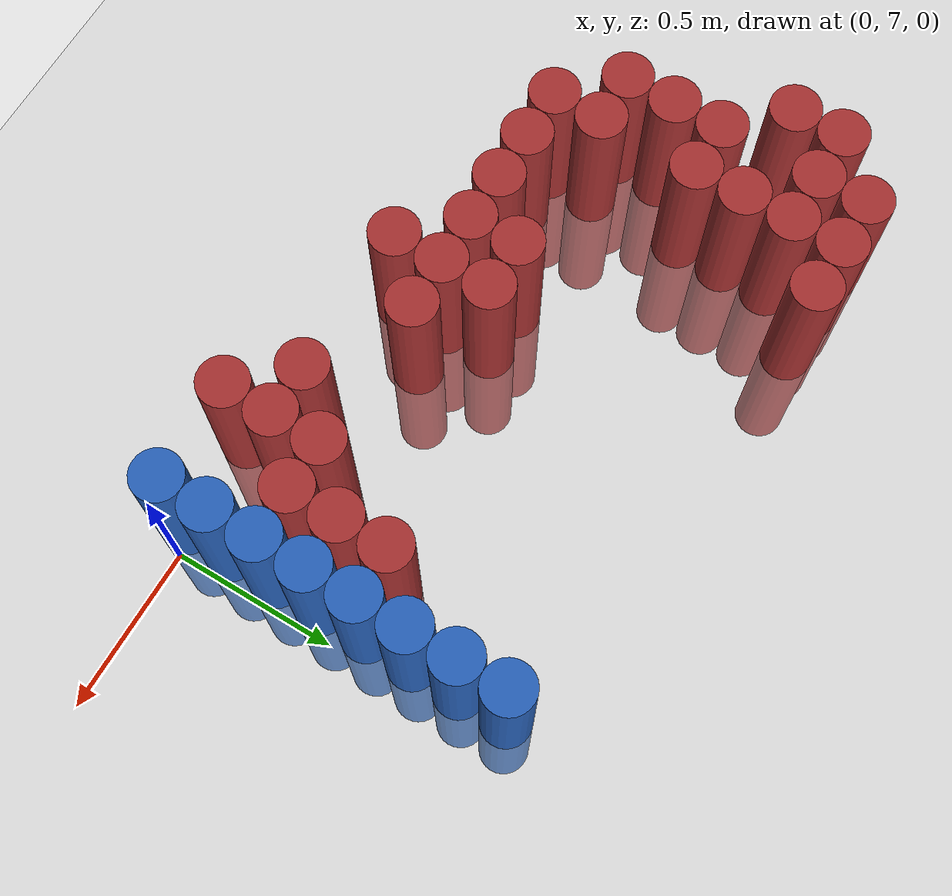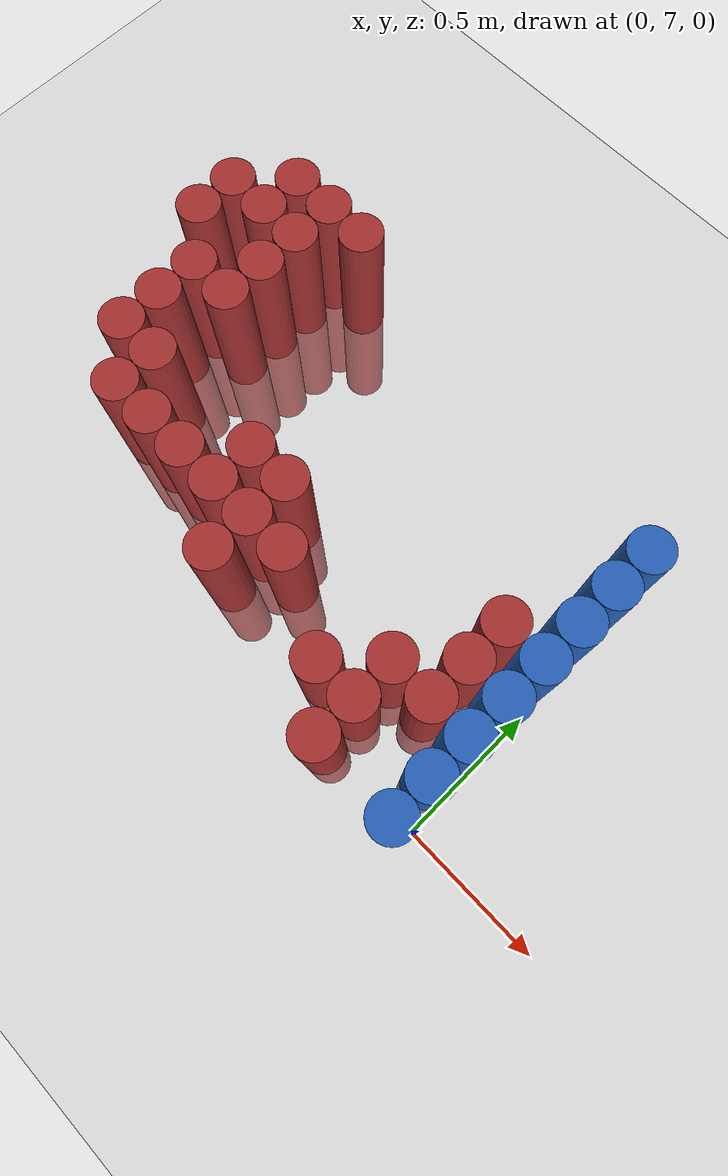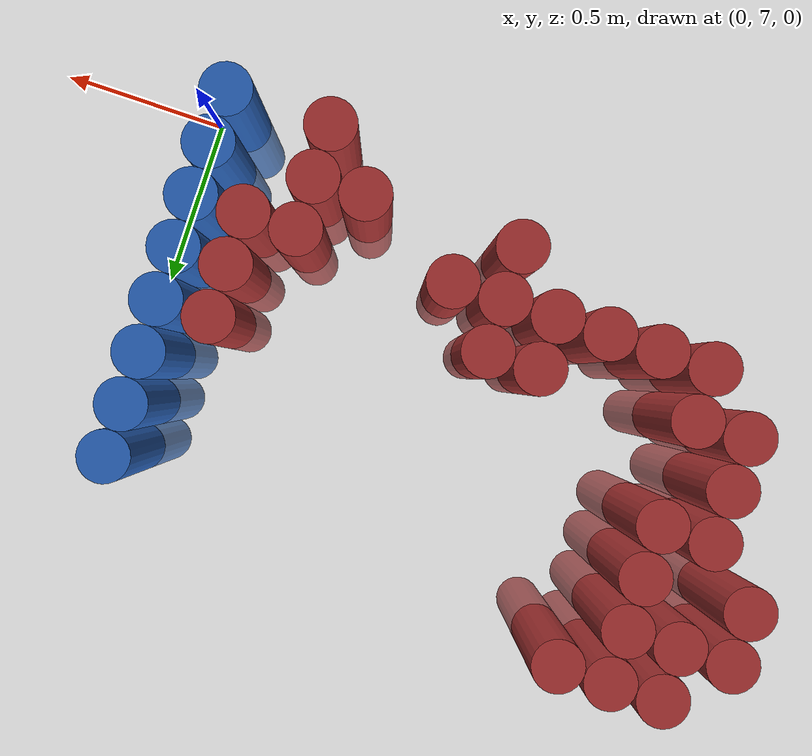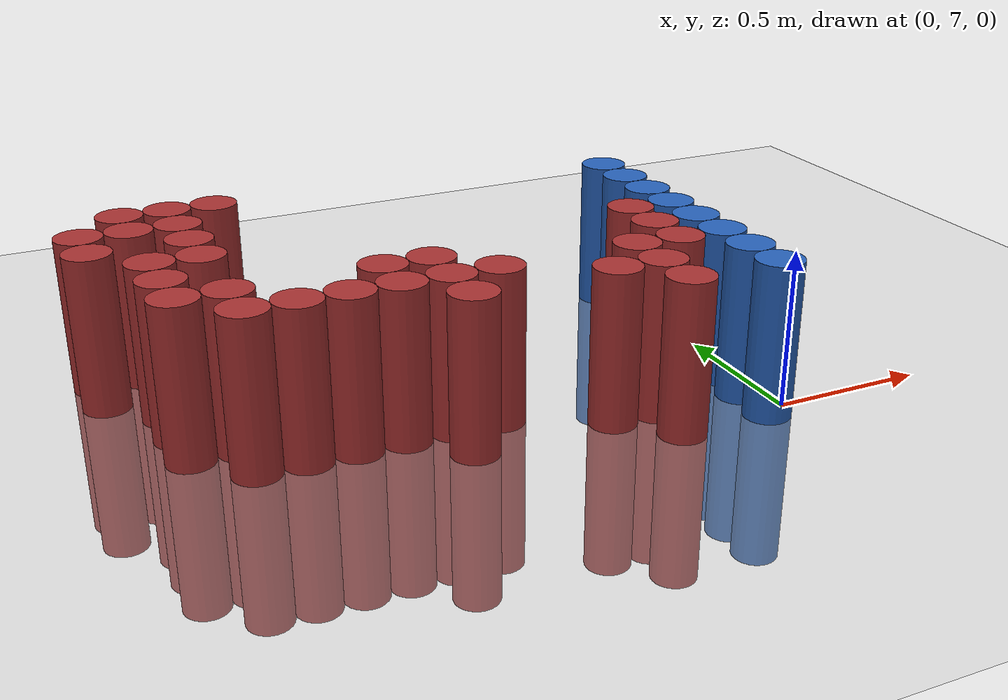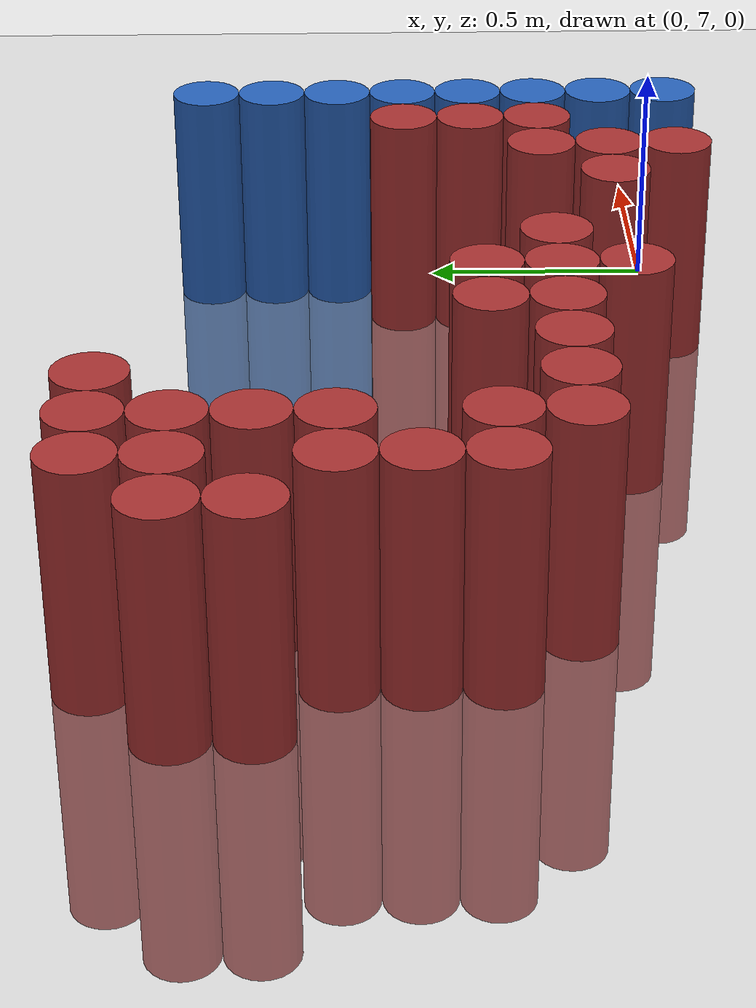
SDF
<sdf version="1.6">
 <world name="default">
  <model name="ground_plane">
   <static>1</static>
   <link name="link">
    <collision name="collision">
     <geometry><plane><normal>0 0 1</normal><size>100 100</size></plane></geometry>
     <surface><friction><ode><mu>100</mu><mu2>50</mu2></ode></friction></surface>
    </collision>
    <visual name="visual">
     <cast_shadows>0</cast_shadows>
     <geometry><plane><normal>0 0 1</normal><size>100 100</size></plane></geometry>
     <material>
      <script><uri>file://media/materials/scripts/gazebo.material</uri><name>Gazebo/Grey</name></script>
     </material>
    </visual>
   </link>
  </model>
  <model name="unit_cylinder_203">
   <static>1</static>
   <pose>-1.875000 7.875000 0.000000 0.000000 0.000000 0.000000</pose>
   <link name="link">
    <inertial>
     <mass>1</mass>
     <inertia><ixx>0.145833</ixx><ixy>0</ixy><ixz>0</ixz><iyy>0.145833</iyy><iyz>0</iyz><izz>0.125</izz></inertia>
    </inertial>
    <collision name="collision">
     <geometry><cylinder><radius>0.075000</radius><length>1</length></cylinder></geometry>
    </collision>
    <visual name="visual">
     <geometry><cylinder><radius>0.075000</radius><length>1</length></cylinder></geometry>
     <material>
      <ambient>0.648000 0.192000 0.192000 1</ambient>
      <diffuse>0.648000 0.192000 0.192000 1</diffuse>
     </material>
     <material>
      <script><name>Gazebo/Grey</name><uri>file://media/materials/scripts/gazebo.material</uri></script>
     </material>
    </visual>
    <sensor name="sensor_contact" type="contact"><contact><collision>collision</collision></contact></sensor>
   </link>
   <plugin filename="gz-sim-touchplugin-system" name="gz::sim::systems::TouchPlugin">
    <target>robot</target>
    <namespace>robot</namespace>
    <time>0.001</time>
    <enabled>true</enabled>
   </plugin>
  </model>
  <model name="unit_cylinder_204">
   <static>1</static>
   <pose>-1.875000 8.025000 0.000000 0.000000 0.000000 0.000000</pose>
   <link name="link">
    <inertial>
     <mass>1</mass>
     <inertia><ixx>0.145833</ixx><ixy>0</ixy><ixz>0</ixz><iyy>0.145833</iyy><iyz>0</iyz><izz>0.125</izz></inertia>
    </inertial>
    <collision name="collision">
     <geometry><cylinder><radius>0.075000</radius><length>1</length></cylinder></geometry>
    </collision>
    <visual name="visual">
     <geometry><cylinder><radius>0.075000</radius><length>1</length></cylinder></geometry>
     <material>
      <ambient>0.648000 0.192000 0.192000 1</ambient>
      <diffuse>0.648000 0.192000 0.192000 1</diffuse>
     </material>
     <material>
      <script><name>Gazebo/Grey</name><uri>file://media/materials/scripts/gazebo.material</uri></script>
     </material>
    </visual>
    <sensor name="sensor_contact" type="contact"><contact><collision>collision</collision></contact></sensor>
   </link>
   <plugin filename="gz-sim-touchplugin-system" name="gz::sim::systems::TouchPlugin">
    <target>robot</target>
    <namespace>robot</namespace>
    <time>0.001</time>
    <enabled>true</enabled>
   </plugin>
  </model>
  <model name="unit_cylinder_211">
   <static>1</static>
   <pose>-1.725000 7.425000 0.000000 0.000000 0.000000 0.000000</pose>
   <link name="link">
    <inertial>
     <mass>1</mass>
     <inertia><ixx>0.145833</ixx><ixy>0</ixy><ixz>0</ixz><iyy>0.145833</iyy><iyz>0</iyz><izz>0.125</izz></inertia>
    </inertial>
    <collision name="collision">
     <geometry><cylinder><radius>0.075000</radius><length>1</length></cylinder></geometry>
    </collision>
    <visual name="visual">
     <geometry><cylinder><radius>0.075000</radius><length>1</length></cylinder></geometry>
     <material>
      <ambient>0.648000 0.192000 0.192000 1</ambient>
      <diffuse>0.648000 0.192000 0.192000 1</diffuse>
     </material>
     <material>
      <script><name>Gazebo/Grey</name><uri>file://media/materials/scripts/gazebo.material</uri></script>
     </material>
    </visual>
    <sensor name="sensor_contact" type="contact"><contact><collision>collision</collision></contact></sensor>
   </link>
   <plugin filename="gz-sim-touchplugin-system" name="gz::sim::systems::TouchPlugin">
    <target>robot</target>
    <namespace>robot</namespace>
    <time>0.001</time>
    <enabled>true</enabled>
   </plugin>
  </model>
  <model name="unit_cylinder_212">
   <static>1</static>
   <pose>-1.725000 7.575000 0.000000 0.000000 0.000000 0.000000</pose>
   <link name="link">
    <inertial>
     <mass>1</mass>
     <inertia><ixx>0.145833</ixx><ixy>0</ixy><ixz>0</ixz><iyy>0.145833</iyy><iyz>0</iyz><izz>0.125</izz></inertia>
    </inertial>
    <collision name="collision">
     <geometry><cylinder><radius>0.075000</radius><length>1</length></cylinder></geometry>
    </collision>
    <visual name="visual">
     <geometry><cylinder><radius>0.075000</radius><length>1</length></cylinder></geometry>
     <material>
      <ambient>0.648000 0.192000 0.192000 1</ambient>
      <diffuse>0.648000 0.192000 0.192000 1</diffuse>
     </material>
     <material>
      <script><name>Gazebo/Grey</name><uri>file://media/materials/scripts/gazebo.material</uri></script>
     </material>
    </visual>
    <sensor name="sensor_contact" type="contact"><contact><collision>collision</collision></contact></sensor>
   </link>
   <plugin filename="gz-sim-touchplugin-system" name="gz::sim::systems::TouchPlugin">
    <target>robot</target>
    <namespace>robot</namespace>
    <time>0.001</time>
    <enabled>true</enabled>
   </plugin>
  </model>
  <model name="unit_cylinder_213">
   <static>1</static>
   <pose>-1.725000 7.725000 0.000000 0.000000 0.000000 0.000000</pose>
   <link name="link">
    <inertial>
     <mass>1</mass>
     <inertia><ixx>0.145833</ixx><ixy>0</ixy><ixz>0</ixz><iyy>0.145833</iyy><iyz>0</iyz><izz>0.125</izz></inertia>
    </inertial>
    <collision name="collision">
     <geometry><cylinder><radius>0.075000</radius><length>1</length></cylinder></geometry>
    </collision>
    <visual name="visual">
     <geometry><cylinder><radius>0.075000</radius><length>1</length></cylinder></geometry>
     <material>
      <ambient>0.648000 0.192000 0.192000 1</ambient>
      <diffuse>0.648000 0.192000 0.192000 1</diffuse>
     </material>
     <material>
      <script><name>Gazebo/Grey</name><uri>file://media/materials/scripts/gazebo.material</uri></script>
     </material>
    </visual>
    <sensor name="sensor_contact" type="contact"><contact><collision>collision</collision></contact></sensor>
   </link>
   <plugin filename="gz-sim-touchplugin-system" name="gz::sim::systems::TouchPlugin">
    <target>robot</target>
    <namespace>robot</namespace>
    <time>0.001</time>
    <enabled>true</enabled>
   </plugin>
  </model>
  <model name="unit_cylinder_214">
   <static>1</static>
   <pose>-1.725000 8.025000 0.000000 0.000000 0.000000 0.000000</pose>
   <link name="link">
    <inertial>
     <mass>1</mass>
     <inertia><ixx>0.145833</ixx><ixy>0</ixy><ixz>0</ixz><iyy>0.145833</iyy><iyz>0</iyz><izz>0.125</izz></inertia>
    </inertial>
    <collision name="collision">
     <geometry><cylinder><radius>0.075000</radius><length>1</length></cylinder></geometry>
    </collision>
    <visual name="visual">
     <geometry><cylinder><radius>0.075000</radius><length>1</length></cylinder></geometry>
     <material>
      <ambient>0.648000 0.192000 0.192000 1</ambient>
      <diffuse>0.648000 0.192000 0.192000 1</diffuse>
     </material>
     <material>
      <script><name>Gazebo/Grey</name><uri>file://media/materials/scripts/gazebo.material</uri></script>
     </material>
    </visual>
    <sensor name="sensor_contact" type="contact"><contact><collision>collision</collision></contact></sensor>
   </link>
   <plugin filename="gz-sim-touchplugin-system" name="gz::sim::systems::TouchPlugin">
    <target>robot</target>
    <namespace>robot</namespace>
    <time>0.001</time>
    <enabled>true</enabled>
   </plugin>
  </model>
  <model name="unit_cylinder_215">
   <static>1</static>
   <pose>-1.725000 8.175000 0.000000 0.000000 0.000000 0.000000</pose>
   <link name="link">
    <inertial>
     <mass>1</mass>
     <inertia><ixx>0.145833</ixx><ixy>0</ixy><ixz>0</ixz><iyy>0.145833</iyy><iyz>0</iyz><izz>0.125</izz></inertia>
    </inertial>
    <collision name="collision">
     <geometry><cylinder><radius>0.075000</radius><length>1</length></cylinder></geometry>
    </collision>
    <visual name="visual">
     <geometry><cylinder><radius>0.075000</radius><length>1</length></cylinder></geometry>
     <material>
      <ambient>0.648000 0.192000 0.192000 1</ambient>
      <diffuse>0.648000 0.192000 0.192000 1</diffuse>
     </material>
     <material>
      <script><name>Gazebo/Grey</name><uri>file://media/materials/scripts/gazebo.material</uri></script>
     </material>
    </visual>
    <sensor name="sensor_contact" type="contact"><contact><collision>collision</collision></contact></sensor>
   </link>
   <plugin filename="gz-sim-touchplugin-system" name="gz::sim::systems::TouchPlugin">
    <target>robot</target>
    <namespace>robot</namespace>
    <time>0.001</time>
    <enabled>true</enabled>
   </plugin>
  </model>
  <model name="unit_cylinder_217">
   <static>1</static>
   <pose>-1.575000 7.275000 0.000000 0.000000 0.000000 0.000000</pose>
   <link name="link">
    <inertial>
     <mass>1</mass>
     <inertia><ixx>0.145833</ixx><ixy>0</ixy><ixz>0</ixz><iyy>0.145833</iyy><iyz>0</iyz><izz>0.125</izz></inertia>
    </inertial>
    <collision name="collision">
     <geometry><cylinder><radius>0.075000</radius><length>1</length></cylinder></geometry>
    </collision>
    <visual name="visual">
     <geometry><cylinder><radius>0.075000</radius><length>1</length></cylinder></geometry>
     <material>
      <ambient>0.648000 0.192000 0.192000 1</ambient>
      <diffuse>0.648000 0.192000 0.192000 1</diffuse>
     </material>
     <material>
      <script><name>Gazebo/Grey</name><uri>file://media/materials/scripts/gazebo.material</uri></script>
     </material>
    </visual>
    <sensor name="sensor_contact" type="contact"><contact><collision>collision</collision></contact></sensor>
   </link>
   <plugin filename="gz-sim-touchplugin-system" name="gz::sim::systems::TouchPlugin">
    <target>robot</target>
    <namespace>robot</namespace>
    <time>0.001</time>
    <enabled>true</enabled>
   </plugin>
  </model>
  <model name="unit_cylinder_218">
   <static>1</static>
   <pose>-1.575000 7.425000 0.000000 0.000000 0.000000 0.000000</pose>
   <link name="link">
    <inertial>
     <mass>1</mass>
     <inertia><ixx>0.145833</ixx><ixy>0</ixy><ixz>0</ixz><iyy>0.145833</iyy><iyz>0</iyz><izz>0.125</izz></inertia>
    </inertial>
    <collision name="collision">
     <geometry><cylinder><radius>0.075000</radius><length>1</length></cylinder></geometry>
    </collision>
    <visual name="visual">
     <geometry><cylinder><radius>0.075000</radius><length>1</length></cylinder></geometry>
     <material>
      <ambient>0.648000 0.192000 0.192000 1</ambient>
      <diffuse>0.648000 0.192000 0.192000 1</diffuse>
     </material>
     <material>
      <script><name>Gazebo/Grey</name><uri>file://media/materials/scripts/gazebo.material</uri></script>
     </material>
    </visual>
    <sensor name="sensor_contact" type="contact"><contact><collision>collision</collision></contact></sensor>
   </link>
   <plugin filename="gz-sim-touchplugin-system" name="gz::sim::systems::TouchPlugin">
    <target>robot</target>
    <namespace>robot</namespace>
    <time>0.001</time>
    <enabled>true</enabled>
   </plugin>
  </model>
  <model name="unit_cylinder_219">
   <static>1</static>
   <pose>-1.575000 7.725000 0.000000 0.000000 0.000000 0.000000</pose>
   <link name="link">
    <inertial>
     <mass>1</mass>
     <inertia><ixx>0.145833</ixx><ixy>0</ixy><ixz>0</ixz><iyy>0.145833</iyy><iyz>0</iyz><izz>0.125</izz></inertia>
    </inertial>
    <collision name="collision">
     <geometry><cylinder><radius>0.075000</radius><length>1</length></cylinder></geometry>
    </collision>
    <visual name="visual">
     <geometry><cylinder><radius>0.075000</radius><length>1</length></cylinder></geometry>
     <material>
      <ambient>0.648000 0.192000 0.192000 1</ambient>
      <diffuse>0.648000 0.192000 0.192000 1</diffuse>
     </material>
     <material>
      <script><name>Gazebo/Grey</name><uri>file://media/materials/scripts/gazebo.material</uri></script>
     </material>
    </visual>
    <sensor name="sensor_contact" type="contact"><contact><collision>collision</collision></contact></sensor>
   </link>
   <plugin filename="gz-sim-touchplugin-system" name="gz::sim::systems::TouchPlugin">
    <target>robot</target>
    <namespace>robot</namespace>
    <time>0.001</time>
    <enabled>true</enabled>
   </plugin>
  </model>
  <model name="unit_cylinder_220">
   <static>1</static>
   <pose>-1.575000 7.875000 0.000000 0.000000 0.000000 0.000000</pose>
   <link name="link">
    <inertial>
     <mass>1</mass>
     <inertia><ixx>0.145833</ixx><ixy>0</ixy><ixz>0</ixz><iyy>0.145833</iyy><iyz>0</iyz><izz>0.125</izz></inertia>
    </inertial>
    <collision name="collision">
     <geometry><cylinder><radius>0.075000</radius><length>1</length></cylinder></geometry>
    </collision>
    <visual name="visual">
     <geometry><cylinder><radius>0.075000</radius><length>1</length></cylinder></geometry>
     <material>
      <ambient>0.648000 0.192000 0.192000 1</ambient>
      <diffuse>0.648000 0.192000 0.192000 1</diffuse>
     </material>
     <material>
      <script><name>Gazebo/Grey</name><uri>file://media/materials/scripts/gazebo.material</uri></script>
     </material>
    </visual>
    <sensor name="sensor_contact" type="contact"><contact><collision>collision</collision></contact></sensor>
   </link>
   <plugin filename="gz-sim-touchplugin-system" name="gz::sim::systems::TouchPlugin">
    <target>robot</target>
    <namespace>robot</namespace>
    <time>0.001</time>
    <enabled>true</enabled>
   </plugin>
  </model>
  <model name="unit_cylinder_221">
   <static>1</static>
   <pose>-1.575000 8.025000 0.000000 0.000000 0.000000 0.000000</pose>
   <link name="link">
    <inertial>
     <mass>1</mass>
     <inertia><ixx>0.145833</ixx><ixy>0</ixy><ixz>0</ixz><iyy>0.145833</iyy><iyz>0</iyz><izz>0.125</izz></inertia>
    </inertial>
    <collision name="collision">
     <geometry><cylinder><radius>0.075000</radius><length>1</length></cylinder></geometry>
    </collision>
    <visual name="visual">
     <geometry><cylinder><radius>0.075000</radius><length>1</length></cylinder></geometry>
     <material>
      <ambient>0.648000 0.192000 0.192000 1</ambient>
      <diffuse>0.648000 0.192000 0.192000 1</diffuse>
     </material>
     <material>
      <script><name>Gazebo/Grey</name><uri>file://media/materials/scripts/gazebo.material</uri></script>
     </material>
    </visual>
    <sensor name="sensor_contact" type="contact"><contact><collision>collision</collision></contact></sensor>
   </link>
   <plugin filename="gz-sim-touchplugin-system" name="gz::sim::systems::TouchPlugin">
    <target>robot</target>
    <namespace>robot</namespace>
    <time>0.001</time>
    <enabled>true</enabled>
   </plugin>
  </model>
  <model name="unit_cylinder_222">
   <static>1</static>
   <pose>-1.575000 8.175000 0.000000 0.000000 0.000000 0.000000</pose>
   <link name="link">
    <inertial>
     <mass>1</mass>
     <inertia><ixx>0.145833</ixx><ixy>0</ixy><ixz>0</ixz><iyy>0.145833</iyy><iyz>0</iyz><izz>0.125</izz></inertia>
    </inertial>
    <collision name="collision">
     <geometry><cylinder><radius>0.075000</radius><length>1</length></cylinder></geometry>
    </collision>
    <visual name="visual">
     <geometry><cylinder><radius>0.075000</radius><length>1</length></cylinder></geometry>
     <material>
      <ambient>0.648000 0.192000 0.192000 1</ambient>
      <diffuse>0.648000 0.192000 0.192000 1</diffuse>
     </material>
     <material>
      <script><name>Gazebo/Grey</name><uri>file://media/materials/scripts/gazebo.material</uri></script>
     </material>
    </visual>
    <sensor name="sensor_contact" type="contact"><contact><collision>collision</collision></contact></sensor>
   </link>
   <plugin filename="gz-sim-touchplugin-system" name="gz::sim::systems::TouchPlugin">
    <target>robot</target>
    <namespace>robot</namespace>
    <time>0.001</time>
    <enabled>true</enabled>
   </plugin>
  </model>
  <model name="unit_cylinder_227">
   <static>1</static>
   <pose>-1.425000 7.275000 0.000000 0.000000 0.000000 0.000000</pose>
   <link name="link">
    <inertial>
     <mass>1</mass>
     <inertia><ixx>0.145833</ixx><ixy>0</ixy><ixz>0</ixz><iyy>0.145833</iyy><iyz>0</iyz><izz>0.125</izz></inertia>
    </inertial>
    <collision name="collision">
     <geometry><cylinder><radius>0.075000</radius><length>1</length></cylinder></geometry>
    </collision>
    <visual name="visual">
     <geometry><cylinder><radius>0.075000</radius><length>1</length></cylinder></geometry>
     <material>
      <ambient>0.648000 0.192000 0.192000 1</ambient>
      <diffuse>0.648000 0.192000 0.192000 1</diffuse>
     </material>
     <material>
      <script><name>Gazebo/Grey</name><uri>file://media/materials/scripts/gazebo.material</uri></script>
     </material>
    </visual>
    <sensor name="sensor_contact" type="contact"><contact><collision>collision</collision></contact></sensor>
   </link>
   <plugin filename="gz-sim-touchplugin-system" name="gz::sim::systems::TouchPlugin">
    <target>robot</target>
    <namespace>robot</namespace>
    <time>0.001</time>
    <enabled>true</enabled>
   </plugin>
  </model>
  <model name="unit_cylinder_228">
   <static>1</static>
   <pose>-1.425000 8.175000 0.000000 0.000000 0.000000 0.000000</pose>
   <link name="link">
    <inertial>
     <mass>1</mass>
     <inertia><ixx>0.145833</ixx><ixy>0</ixy><ixz>0</ixz><iyy>0.145833</iyy><iyz>0</iyz><izz>0.125</izz></inertia>
    </inertial>
    <collision name="collision">
     <geometry><cylinder><radius>0.075000</radius><length>1</length></cylinder></geometry>
    </collision>
    <visual name="visual">
     <geometry><cylinder><radius>0.075000</radius><length>1</length></cylinder></geometry>
     <material>
      <ambient>0.648000 0.192000 0.192000 1</ambient>
      <diffuse>0.648000 0.192000 0.192000 1</diffuse>
     </material>
     <material>
      <script><name>Gazebo/Grey</name><uri>file://media/materials/scripts/gazebo.material</uri></script>
     </material>
    </visual>
    <sensor name="sensor_contact" type="contact"><contact><collision>collision</collision></contact></sensor>
   </link>
   <plugin filename="gz-sim-touchplugin-system" name="gz::sim::systems::TouchPlugin">
    <target>robot</target>
    <namespace>robot</namespace>
    <time>0.001</time>
    <enabled>true</enabled>
   </plugin>
  </model>
  <model name="unit_cylinder_233">
   <static>1</static>
   <pose>-1.275000 7.275000 0.000000 0.000000 0.000000 0.000000</pose>
   <link name="link">
    <inertial>
     <mass>1</mass>
     <inertia><ixx>0.145833</ixx><ixy>0</ixy><ixz>0</ixz><iyy>0.145833</iyy><iyz>0</iyz><izz>0.125</izz></inertia>
    </inertial>
    <collision name="collision">
     <geometry><cylinder><radius>0.075000</radius><length>1</length></cylinder></geometry>
    </collision>
    <visual name="visual">
     <geometry><cylinder><radius>0.075000</radius><length>1</length></cylinder></geometry>
     <material>
      <ambient>0.648000 0.192000 0.192000 1</ambient>
      <diffuse>0.648000 0.192000 0.192000 1</diffuse>
     </material>
     <material>
      <script><name>Gazebo/Grey</name><uri>file://media/materials/scripts/gazebo.material</uri></script>
     </material>
    </visual>
    <sensor name="sensor_contact" type="contact"><contact><collision>collision</collision></contact></sensor>
   </link>
   <plugin filename="gz-sim-touchplugin-system" name="gz::sim::systems::TouchPlugin">
    <target>robot</target>
    <namespace>robot</namespace>
    <time>0.001</time>
    <enabled>true</enabled>
   </plugin>
  </model>
  <model name="unit_cylinder_240">
   <static>1</static>
   <pose>-1.125000 7.275000 0.000000 0.000000 0.000000 0.000000</pose>
   <link name="link">
    <inertial>
     <mass>1</mass>
     <inertia><ixx>0.145833</ixx><ixy>0</ixy><ixz>0</ixz><iyy>0.145833</iyy><iyz>0</iyz><izz>0.125</izz></inertia>
    </inertial>
    <collision name="collision">
     <geometry><cylinder><radius>0.075000</radius><length>1</length></cylinder></geometry>
    </collision>
    <visual name="visual">
     <geometry><cylinder><radius>0.075000</radius><length>1</length></cylinder></geometry>
     <material>
      <ambient>0.648000 0.192000 0.192000 1</ambient>
      <diffuse>0.648000 0.192000 0.192000 1</diffuse>
     </material>
     <material>
      <script><name>Gazebo/Grey</name><uri>file://media/materials/scripts/gazebo.material</uri></script>
     </material>
    </visual>
    <sensor name="sensor_contact" type="contact"><contact><collision>collision</collision></contact></sensor>
   </link>
   <plugin filename="gz-sim-touchplugin-system" name="gz::sim::systems::TouchPlugin">
    <target>robot</target>
    <namespace>robot</namespace>
    <time>0.001</time>
    <enabled>true</enabled>
   </plugin>
  </model>
  <model name="unit_cylinder_241">
   <static>1</static>
   <pose>-1.125000 7.425000 0.000000 0.000000 0.000000 0.000000</pose>
   <link name="link">
    <inertial>
     <mass>1</mass>
     <inertia><ixx>0.145833</ixx><ixy>0</ixy><ixz>0</ixz><iyy>0.145833</iyy><iyz>0</iyz><izz>0.125</izz></inertia>
    </inertial>
    <collision name="collision">
     <geometry><cylinder><radius>0.075000</radius><length>1</length></cylinder></geometry>
    </collision>
    <visual name="visual">
     <geometry><cylinder><radius>0.075000</radius><length>1</length></cylinder></geometry>
     <material>
      <ambient>0.648000 0.192000 0.192000 1</ambient>
      <diffuse>0.648000 0.192000 0.192000 1</diffuse>
     </material>
     <material>
      <script><name>Gazebo/Grey</name><uri>file://media/materials/scripts/gazebo.material</uri></script>
     </material>
    </visual>
    <sensor name="sensor_contact" type="contact"><contact><collision>collision</collision></contact></sensor>
   </link>
   <plugin filename="gz-sim-touchplugin-system" name="gz::sim::systems::TouchPlugin">
    <target>robot</target>
    <namespace>robot</namespace>
    <time>0.001</time>
    <enabled>true</enabled>
   </plugin>
  </model>
  <model name="unit_cylinder_250">
   <static>1</static>
   <pose>-0.975000 7.125000 0.000000 0.000000 0.000000 0.000000</pose>
   <link name="link">
    <inertial>
     <mass>1</mass>
     <inertia><ixx>0.145833</ixx><ixy>0</ixy><ixz>0</ixz><iyy>0.145833</iyy><iyz>0</iyz><izz>0.125</izz></inertia>
    </inertial>
    <collision name="collision">
     <geometry><cylinder><radius>0.075000</radius><length>1</length></cylinder></geometry>
    </collision>
    <visual name="visual">
     <geometry><cylinder><radius>0.075000</radius><length>1</length></cylinder></geometry>
     <material>
      <ambient>0.648000 0.192000 0.192000 1</ambient>
      <diffuse>0.648000 0.192000 0.192000 1</diffuse>
     </material>
     <material>
      <script><name>Gazebo/Grey</name><uri>file://media/materials/scripts/gazebo.material</uri></script>
     </material>
    </visual>
    <sensor name="sensor_contact" type="contact"><contact><collision>collision</collision></contact></sensor>
   </link>
   <plugin filename="gz-sim-touchplugin-system" name="gz::sim::systems::TouchPlugin">
    <target>robot</target>
    <namespace>robot</namespace>
    <time>0.001</time>
    <enabled>true</enabled>
   </plugin>
  </model>
  <model name="unit_cylinder_251">
   <static>1</static>
   <pose>-0.975000 7.275000 0.000000 0.000000 0.000000 0.000000</pose>
   <link name="link">
    <inertial>
     <mass>1</mass>
     <inertia><ixx>0.145833</ixx><ixy>0</ixy><ixz>0</ixz><iyy>0.145833</iyy><iyz>0</iyz><izz>0.125</izz></inertia>
    </inertial>
    <collision name="collision">
     <geometry><cylinder><radius>0.075000</radius><length>1</length></cylinder></geometry>
    </collision>
    <visual name="visual">
     <geometry><cylinder><radius>0.075000</radius><length>1</length></cylinder></geometry>
     <material>
      <ambient>0.648000 0.192000 0.192000 1</ambient>
      <diffuse>0.648000 0.192000 0.192000 1</diffuse>
     </material>
     <material>
      <script><name>Gazebo/Grey</name><uri>file://media/materials/scripts/gazebo.material</uri></script>
     </material>
    </visual>
    <sensor name="sensor_contact" type="contact"><contact><collision>collision</collision></contact></sensor>
   </link>
   <plugin filename="gz-sim-touchplugin-system" name="gz::sim::systems::TouchPlugin">
    <target>robot</target>
    <namespace>robot</namespace>
    <time>0.001</time>
    <enabled>true</enabled>
   </plugin>
  </model>
  <model name="unit_cylinder_252">
   <static>1</static>
   <pose>-0.975000 7.425000 0.000000 0.000000 0.000000 0.000000</pose>
   <link name="link">
    <inertial>
     <mass>1</mass>
     <inertia><ixx>0.145833</ixx><ixy>0</ixy><ixz>0</ixz><iyy>0.145833</iyy><iyz>0</iyz><izz>0.125</izz></inertia>
    </inertial>
    <collision name="collision">
     <geometry><cylinder><radius>0.075000</radius><length>1</length></cylinder></geometry>
    </collision>
    <visual name="visual">
     <geometry><cylinder><radius>0.075000</radius><length>1</length></cylinder></geometry>
     <material>
      <ambient>0.648000 0.192000 0.192000 1</ambient>
      <diffuse>0.648000 0.192000 0.192000 1</diffuse>
     </material>
     <material>
      <script><name>Gazebo/Grey</name><uri>file://media/materials/scripts/gazebo.material</uri></script>
     </material>
    </visual>
    <sensor name="sensor_contact" type="contact"><contact><collision>collision</collision></contact></sensor>
   </link>
   <plugin filename="gz-sim-touchplugin-system" name="gz::sim::systems::TouchPlugin">
    <target>robot</target>
    <namespace>robot</namespace>
    <time>0.001</time>
    <enabled>true</enabled>
   </plugin>
  </model>
  <model name="unit_cylinder_257">
   <static>1</static>
   <pose>-0.825000 7.275000 0.000000 0.000000 0.000000 0.000000</pose>
   <link name="link">
    <inertial>
     <mass>1</mass>
     <inertia><ixx>0.145833</ixx><ixy>0</ixy><ixz>0</ixz><iyy>0.145833</iyy><iyz>0</iyz><izz>0.125</izz></inertia>
    </inertial>
    <collision name="collision">
     <geometry><cylinder><radius>0.075000</radius><length>1</length></cylinder></geometry>
    </collision>
    <visual name="visual">
     <geometry><cylinder><radius>0.075000</radius><length>1</length></cylinder></geometry>
     <material>
      <ambient>0.648000 0.192000 0.192000 1</ambient>
      <diffuse>0.648000 0.192000 0.192000 1</diffuse>
     </material>
     <material>
      <script><name>Gazebo/Grey</name><uri>file://media/materials/scripts/gazebo.material</uri></script>
     </material>
    </visual>
    <sensor name="sensor_contact" type="contact"><contact><collision>collision</collision></contact></sensor>
   </link>
   <plugin filename="gz-sim-touchplugin-system" name="gz::sim::systems::TouchPlugin">
    <target>robot</target>
    <namespace>robot</namespace>
    <time>0.001</time>
    <enabled>true</enabled>
   </plugin>
  </model>
  <model name="unit_cylinder_277">
   <static>1</static>
   <pose>-0.525000 7.125000 0.000000 0.000000 0.000000 0.000000</pose>
   <link name="link">
    <inertial>
     <mass>1</mass>
     <inertia><ixx>0.145833</ixx><ixy>0</ixy><ixz>0</ixz><iyy>0.145833</iyy><iyz>0</iyz><izz>0.125</izz></inertia>
    </inertial>
    <collision name="collision">
     <geometry><cylinder><radius>0.075000</radius><length>1</length></cylinder></geometry>
    </collision>
    <visual name="visual">
     <geometry><cylinder><radius>0.075000</radius><length>1</length></cylinder></geometry>
     <material>
      <ambient>0.648000 0.192000 0.192000 1</ambient>
      <diffuse>0.648000 0.192000 0.192000 1</diffuse>
     </material>
     <material>
      <script><name>Gazebo/Grey</name><uri>file://media/materials/scripts/gazebo.material</uri></script>
     </material>
    </visual>
    <sensor name="sensor_contact" type="contact"><contact><collision>collision</collision></contact></sensor>
   </link>
   <plugin filename="gz-sim-touchplugin-system" name="gz::sim::systems::TouchPlugin">
    <target>robot</target>
    <namespace>robot</namespace>
    <time>0.001</time>
    <enabled>true</enabled>
   </plugin>
  </model>
  <model name="unit_cylinder_288">
   <static>1</static>
   <pose>-0.375000 6.975000 0.000000 0.000000 0.000000 0.000000</pose>
   <link name="link">
    <inertial>
     <mass>1</mass>
     <inertia><ixx>0.145833</ixx><ixy>0</ixy><ixz>0</ixz><iyy>0.145833</iyy><iyz>0</iyz><izz>0.125</izz></inertia>
    </inertial>
    <collision name="collision">
     <geometry><cylinder><radius>0.075000</radius><length>1</length></cylinder></geometry>
    </collision>
    <visual name="visual">
     <geometry><cylinder><radius>0.075000</radius><length>1</length></cylinder></geometry>
     <material>
      <ambient>0.648000 0.192000 0.192000 1</ambient>
      <diffuse>0.648000 0.192000 0.192000 1</diffuse>
     </material>
     <material>
      <script><name>Gazebo/Grey</name><uri>file://media/materials/scripts/gazebo.material</uri></script>
     </material>
    </visual>
    <sensor name="sensor_contact" type="contact"><contact><collision>collision</collision></contact></sensor>
   </link>
   <plugin filename="gz-sim-touchplugin-system" name="gz::sim::systems::TouchPlugin">
    <target>robot</target>
    <namespace>robot</namespace>
    <time>0.001</time>
    <enabled>true</enabled>
   </plugin>
  </model>
  <model name="unit_cylinder_289">
   <static>1</static>
   <pose>-0.375000 7.125000 0.000000 0.000000 0.000000 0.000000</pose>
   <link name="link">
    <inertial>
     <mass>1</mass>
     <inertia><ixx>0.145833</ixx><ixy>0</ixy><ixz>0</ixz><iyy>0.145833</iyy><iyz>0</iyz><izz>0.125</izz></inertia>
    </inertial>
    <collision name="collision">
     <geometry><cylinder><radius>0.075000</radius><length>1</length></cylinder></geometry>
    </collision>
    <visual name="visual">
     <geometry><cylinder><radius>0.075000</radius><length>1</length></cylinder></geometry>
     <material>
      <ambient>0.648000 0.192000 0.192000 1</ambient>
      <diffuse>0.648000 0.192000 0.192000 1</diffuse>
     </material>
     <material>
      <script><name>Gazebo/Grey</name><uri>file://media/materials/scripts/gazebo.material</uri></script>
     </material>
    </visual>
    <sensor name="sensor_contact" type="contact"><contact><collision>collision</collision></contact></sensor>
   </link>
   <plugin filename="gz-sim-touchplugin-system" name="gz::sim::systems::TouchPlugin">
    <target>robot</target>
    <namespace>robot</namespace>
    <time>0.001</time>
    <enabled>true</enabled>
   </plugin>
  </model>
  <model name="unit_cylinder_290">
   <static>1</static>
   <pose>-0.375000 7.275000 0.000000 0.000000 0.000000 0.000000</pose>
   <link name="link">
    <inertial>
     <mass>1</mass>
     <inertia><ixx>0.145833</ixx><ixy>0</ixy><ixz>0</ixz><iyy>0.145833</iyy><iyz>0</iyz><izz>0.125</izz></inertia>
    </inertial>
    <collision name="collision">
     <geometry><cylinder><radius>0.075000</radius><length>1</length></cylinder></geometry>
    </collision>
    <visual name="visual">
     <geometry><cylinder><radius>0.075000</radius><length>1</length></cylinder></geometry>
     <material>
      <ambient>0.648000 0.192000 0.192000 1</ambient>
      <diffuse>0.648000 0.192000 0.192000 1</diffuse>
     </material>
     <material>
      <script><name>Gazebo/Grey</name><uri>file://media/materials/scripts/gazebo.material</uri></script>
     </material>
    </visual>
    <sensor name="sensor_contact" type="contact"><contact><collision>collision</collision></contact></sensor>
   </link>
   <plugin filename="gz-sim-touchplugin-system" name="gz::sim::systems::TouchPlugin">
    <target>robot</target>
    <namespace>robot</namespace>
    <time>0.001</time>
    <enabled>true</enabled>
   </plugin>
  </model>
  <model name="unit_cylinder_294">
   <static>1</static>
   <pose>-0.225000 7.275000 0.000000 0.000000 0.000000 0.000000</pose>
   <link name="link">
    <inertial>
     <mass>1</mass>
     <inertia><ixx>0.145833</ixx><ixy>0</ixy><ixz>0</ixz><iyy>0.145833</iyy><iyz>0</iyz><izz>0.125</izz></inertia>
    </inertial>
    <collision name="collision">
     <geometry><cylinder><radius>0.075000</radius><length>1</length></cylinder></geometry>
    </collision>
    <visual name="visual">
     <geometry><cylinder><radius>0.075000</radius><length>1</length></cylinder></geometry>
     <material>
      <ambient>0.648000 0.192000 0.192000 1</ambient>
      <diffuse>0.648000 0.192000 0.192000 1</diffuse>
     </material>
     <material>
      <script><name>Gazebo/Grey</name><uri>file://media/materials/scripts/gazebo.material</uri></script>
     </material>
    </visual>
    <sensor name="sensor_contact" type="contact"><contact><collision>collision</collision></contact></sensor>
   </link>
   <plugin filename="gz-sim-touchplugin-system" name="gz::sim::systems::TouchPlugin">
    <target>robot</target>
    <namespace>robot</namespace>
    <time>0.001</time>
    <enabled>true</enabled>
   </plugin>
  </model>
  <model name="unit_cylinder_295">
   <static>1</static>
   <pose>-0.225000 7.425000 0.000000 0.000000 0.000000 0.000000</pose>
   <link name="link">
    <inertial>
     <mass>1</mass>
     <inertia><ixx>0.145833</ixx><ixy>0</ixy><ixz>0</ixz><iyy>0.145833</iyy><iyz>0</iyz><izz>0.125</izz></inertia>
    </inertial>
    <collision name="collision">
     <geometry><cylinder><radius>0.075000</radius><length>1</length></cylinder></geometry>
    </collision>
    <visual name="visual">
     <geometry><cylinder><radius>0.075000</radius><length>1</length></cylinder></geometry>
     <material>
      <ambient>0.648000 0.192000 0.192000 1</ambient>
      <diffuse>0.648000 0.192000 0.192000 1</diffuse>
     </material>
     <material>
      <script><name>Gazebo/Grey</name><uri>file://media/materials/scripts/gazebo.material</uri></script>
     </material>
    </visual>
    <sensor name="sensor_contact" type="contact"><contact><collision>collision</collision></contact></sensor>
   </link>
   <plugin filename="gz-sim-touchplugin-system" name="gz::sim::systems::TouchPlugin">
    <target>robot</target>
    <namespace>robot</namespace>
    <time>0.001</time>
    <enabled>true</enabled>
   </plugin>
  </model>
  <model name="unit_cylinder_296">
   <static>1</static>
   <pose>-0.225000 7.575000 0.000000 0.000000 0.000000 0.000000</pose>
   <link name="link">
    <inertial>
     <mass>1</mass>
     <inertia><ixx>0.145833</ixx><ixy>0</ixy><ixz>0</ixz><iyy>0.145833</iyy><iyz>0</iyz><izz>0.125</izz></inertia>
    </inertial>
    <collision name="collision">
     <geometry><cylinder><radius>0.075000</radius><length>1</length></cylinder></geometry>
    </collision>
    <visual name="visual">
     <geometry><cylinder><radius>0.075000</radius><length>1</length></cylinder></geometry>
     <material>
      <ambient>0.648000 0.192000 0.192000 1</ambient>
      <diffuse>0.648000 0.192000 0.192000 1</diffuse>
     </material>
     <material>
      <script><name>Gazebo/Grey</name><uri>file://media/materials/scripts/gazebo.material</uri></script>
     </material>
    </visual>
    <sensor name="sensor_contact" type="contact"><contact><collision>collision</collision></contact></sensor>
   </link>
   <plugin filename="gz-sim-touchplugin-system" name="gz::sim::systems::TouchPlugin">
    <target>robot</target>
    <namespace>robot</namespace>
    <time>0.001</time>
    <enabled>true</enabled>
   </plugin>
  </model>
  <model name="unit_cylinder_318">
   <static>1</static>
   <pose>-0.075000 6.975000 0.000000 0.000000 0.000000 0.000000</pose>
   <link name="link">
    <inertial>
     <mass>1</mass>
     <inertia><ixx>0.145833</ixx><ixy>0</ixy><ixz>0</ixz><iyy>0.145833</iyy><iyz>0</iyz><izz>0.125</izz></inertia>
    </inertial>
    <collision name="collision">
     <geometry><cylinder><radius>0.075000</radius><length>1</length></cylinder></geometry>
    </collision>
    <visual name="visual">
     <geometry><cylinder><radius>0.075000</radius><length>1</length></cylinder></geometry>
     <material>
      <ambient>0.152000 0.379000 0.720000 1</ambient>
      <diffuse>0.152000 0.379000 0.720000 1</diffuse>
     </material>
     <material>
      <script><name>Gazebo/Grey</name><uri>file://media/materials/scripts/gazebo.material</uri></script>
     </material>
    </visual>
    <sensor name="sensor_contact" type="contact"><contact><collision>collision</collision></contact></sensor>
   </link>
   <plugin filename="gz-sim-touchplugin-system" name="gz::sim::systems::TouchPlugin">
    <target>robot</target>
    <namespace>robot</namespace>
    <time>0.001</time>
    <enabled>true</enabled>
   </plugin>
  </model>
  <model name="unit_cylinder_319">
   <static>1</static>
   <pose>-0.075000 7.125000 0.000000 0.000000 0.000000 0.000000</pose>
   <link name="link">
    <inertial>
     <mass>1</mass>
     <inertia><ixx>0.145833</ixx><ixy>0</ixy><ixz>0</ixz><iyy>0.145833</iyy><iyz>0</iyz><izz>0.125</izz></inertia>
    </inertial>
    <collision name="collision">
     <geometry><cylinder><radius>0.075000</radius><length>1</length></cylinder></geometry>
    </collision>
    <visual name="visual">
     <geometry><cylinder><radius>0.075000</radius><length>1</length></cylinder></geometry>
     <material>
      <ambient>0.152000 0.379000 0.720000 1</ambient>
      <diffuse>0.152000 0.379000 0.720000 1</diffuse>
     </material>
     <material>
      <script><name>Gazebo/Grey</name><uri>file://media/materials/scripts/gazebo.material</uri></script>
     </material>
    </visual>
    <sensor name="sensor_contact" type="contact"><contact><collision>collision</collision></contact></sensor>
   </link>
   <plugin filename="gz-sim-touchplugin-system" name="gz::sim::systems::TouchPlugin">
    <target>robot</target>
    <namespace>robot</namespace>
    <time>0.001</time>
    <enabled>true</enabled>
   </plugin>
  </model>
  <model name="unit_cylinder_320">
   <static>1</static>
   <pose>-0.075000 7.275000 0.000000 0.000000 0.000000 0.000000</pose>
   <link name="link">
    <inertial>
     <mass>1</mass>
     <inertia><ixx>0.145833</ixx><ixy>0</ixy><ixz>0</ixz><iyy>0.145833</iyy><iyz>0</iyz><izz>0.125</izz></inertia>
    </inertial>
    <collision name="collision">
     <geometry><cylinder><radius>0.075000</radius><length>1</length></cylinder></geometry>
    </collision>
    <visual name="visual">
     <geometry><cylinder><radius>0.075000</radius><length>1</length></cylinder></geometry>
     <material>
      <ambient>0.152000 0.379000 0.720000 1</ambient>
      <diffuse>0.152000 0.379000 0.720000 1</diffuse>
     </material>
     <material>
      <script><name>Gazebo/Grey</name><uri>file://media/materials/scripts/gazebo.material</uri></script>
     </material>
    </visual>
    <sensor name="sensor_contact" type="contact"><contact><collision>collision</collision></contact></sensor>
   </link>
   <plugin filename="gz-sim-touchplugin-system" name="gz::sim::systems::TouchPlugin">
    <target>robot</target>
    <namespace>robot</namespace>
    <time>0.001</time>
    <enabled>true</enabled>
   </plugin>
  </model>
  <model name="unit_cylinder_321">
   <static>1</static>
   <pose>-0.075000 7.425000 0.000000 0.000000 0.000000 0.000000</pose>
   <link name="link">
    <inertial>
     <mass>1</mass>
     <inertia><ixx>0.145833</ixx><ixy>0</ixy><ixz>0</ixz><iyy>0.145833</iyy><iyz>0</iyz><izz>0.125</izz></inertia>
    </inertial>
    <collision name="collision">
     <geometry><cylinder><radius>0.075000</radius><length>1</length></cylinder></geometry>
    </collision>
    <visual name="visual">
     <geometry><cylinder><radius>0.075000</radius><length>1</length></cylinder></geometry>
     <material>
      <ambient>0.152000 0.379000 0.720000 1</ambient>
      <diffuse>0.152000 0.379000 0.720000 1</diffuse>
     </material>
     <material>
      <script><name>Gazebo/Grey</name><uri>file://media/materials/scripts/gazebo.material</uri></script>
     </material>
    </visual>
    <sensor name="sensor_contact" type="contact"><contact><collision>collision</collision></contact></sensor>
   </link>
   <plugin filename="gz-sim-touchplugin-system" name="gz::sim::systems::TouchPlugin">
    <target>robot</target>
    <namespace>robot</namespace>
    <time>0.001</time>
    <enabled>true</enabled>
   </plugin>
  </model>
  <model name="unit_cylinder_322">
   <static>1</static>
   <pose>-0.075000 7.575000 0.000000 0.000000 0.000000 0.000000</pose>
   <link name="link">
    <inertial>
     <mass>1</mass>
     <inertia><ixx>0.145833</ixx><ixy>0</ixy><ixz>0</ixz><iyy>0.145833</iyy><iyz>0</iyz><izz>0.125</izz></inertia>
    </inertial>
    <collision name="collision">
     <geometry><cylinder><radius>0.075000</radius><length>1</length></cylinder></geometry>
    </collision>
    <visual name="visual">
     <geometry><cylinder><radius>0.075000</radius><length>1</length></cylinder></geometry>
     <material>
      <ambient>0.152000 0.379000 0.720000 1</ambient>
      <diffuse>0.152000 0.379000 0.720000 1</diffuse>
     </material>
     <material>
      <script><name>Gazebo/Grey</name><uri>file://media/materials/scripts/gazebo.material</uri></script>
     </material>
    </visual>
    <sensor name="sensor_contact" type="contact"><contact><collision>collision</collision></contact></sensor>
   </link>
   <plugin filename="gz-sim-touchplugin-system" name="gz::sim::systems::TouchPlugin">
    <target>robot</target>
    <namespace>robot</namespace>
    <time>0.001</time>
    <enabled>true</enabled>
   </plugin>
  </model>
  <model name="unit_cylinder_323">
   <static>1</static>
   <pose>-0.075000 7.725000 0.000000 0.000000 0.000000 0.000000</pose>
   <link name="link">
    <inertial>
     <mass>1</mass>
     <inertia><ixx>0.145833</ixx><ixy>0</ixy><ixz>0</ixz><iyy>0.145833</iyy><iyz>0</iyz><izz>0.125</izz></inertia>
    </inertial>
    <collision name="collision">
     <geometry><cylinder><radius>0.075000</radius><length>1</length></cylinder></geometry>
    </collision>
    <visual name="visual">
     <geometry><cylinder><radius>0.075000</radius><length>1</length></cylinder></geometry>
     <material>
      <ambient>0.152000 0.379000 0.720000 1</ambient>
      <diffuse>0.152000 0.379000 0.720000 1</diffuse>
     </material>
     <material>
      <script><name>Gazebo/Grey</name><uri>file://media/materials/scripts/gazebo.material</uri></script>
     </material>
    </visual>
    <sensor name="sensor_contact" type="contact"><contact><collision>collision</collision></contact></sensor>
   </link>
   <plugin filename="gz-sim-touchplugin-system" name="gz::sim::systems::TouchPlugin">
    <target>robot</target>
    <namespace>robot</namespace>
    <time>0.001</time>
    <enabled>true</enabled>
   </plugin>
  </model>
  <model name="unit_cylinder_324">
   <static>1</static>
   <pose>-0.075000 7.875000 0.000000 0.000000 0.000000 0.000000</pose>
   <link name="link">
    <inertial>
     <mass>1</mass>
     <inertia><ixx>0.145833</ixx><ixy>0</ixy><ixz>0</ixz><iyy>0.145833</iyy><iyz>0</iyz><izz>0.125</izz></inertia>
    </inertial>
    <collision name="collision">
     <geometry><cylinder><radius>0.075000</radius><length>1</length></cylinder></geometry>
    </collision>
    <visual name="visual">
     <geometry><cylinder><radius>0.075000</radius><length>1</length></cylinder></geometry>
     <material>
      <ambient>0.152000 0.379000 0.720000 1</ambient>
      <diffuse>0.152000 0.379000 0.720000 1</diffuse>
     </material>
     <material>
      <script><name>Gazebo/Grey</name><uri>file://media/materials/scripts/gazebo.material</uri></script>
     </material>
    </visual>
    <sensor name="sensor_contact" type="contact"><contact><collision>collision</collision></contact></sensor>
   </link>
   <plugin filename="gz-sim-touchplugin-system" name="gz::sim::systems::TouchPlugin">
    <target>robot</target>
    <namespace>robot</namespace>
    <time>0.001</time>
    <enabled>true</enabled>
   </plugin>
  </model>
  <model name="unit_cylinder_325">
   <static>1</static>
   <pose>-0.075000 8.025000 0.000000 0.000000 0.000000 0.000000</pose>
   <link name="link">
    <inertial>
     <mass>1</mass>
     <inertia><ixx>0.145833</ixx><ixy>0</ixy><ixz>0</ixz><iyy>0.145833</iyy><iyz>0</iyz><izz>0.125</izz></inertia>
    </inertial>
    <collision name="collision">
     <geometry><cylinder><radius>0.075000</radius><length>1</length></cylinder></geometry>
    </collision>
    <visual name="visual">
     <geometry><cylinder><radius>0.075000</radius><length>1</length></cylinder></geometry>
     <material>
      <ambient>0.152000 0.379000 0.720000 1</ambient>
      <diffuse>0.152000 0.379000 0.720000 1</diffuse>
     </material>
     <material>
      <script><name>Gazebo/Grey</name><uri>file://media/materials/scripts/gazebo.material</uri></script>
     </material>
    </visual>
    <sensor name="sensor_contact" type="contact"><contact><collision>collision</collision></contact></sensor>
   </link>
   <plugin filename="gz-sim-touchplugin-system" name="gz::sim::systems::TouchPlugin">
    <target>robot</target>
    <namespace>robot</namespace>
    <time>0.001</time>
    <enabled>true</enabled>
   </plugin>
  </model>
 </world>
</sdf>
